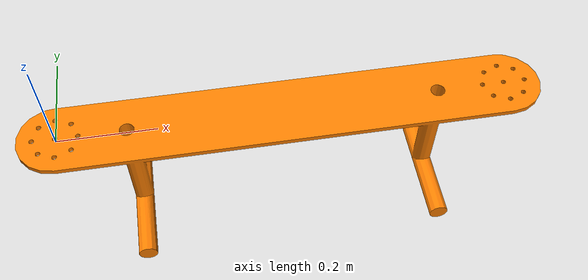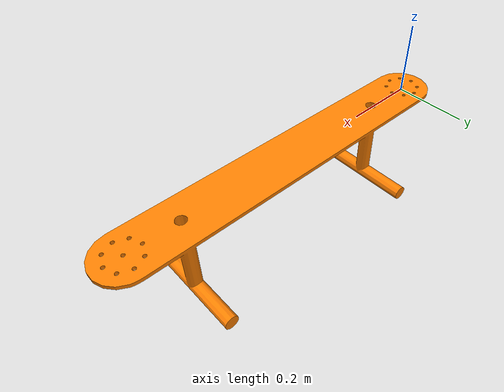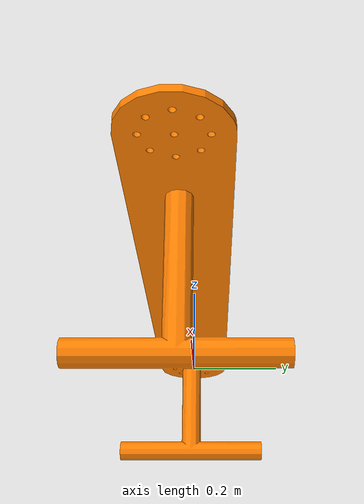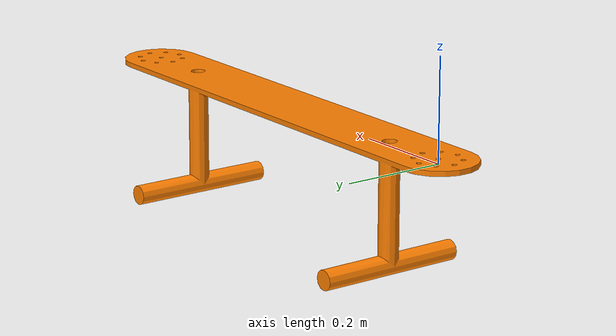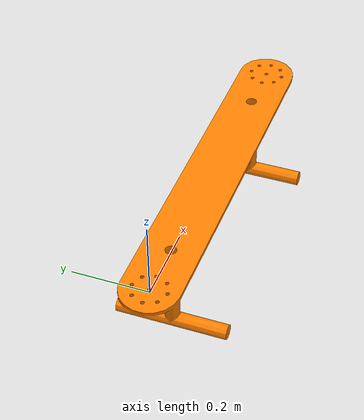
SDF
<sdf version='1.9'>
  <model name='path_marker'>
    <static>true</static>
    <link name='base_link'>
      <inertial>
        <pose>0.4572 -0.075291 8.9953e-08 0 0 0</pose>
        <mass>2.538</mass>
        <inertia>
          <ixx>0.03791</ixx>
          <ixy>2.4647e-07</ixy>
          <ixz>1.9347e-07</ixz>
          <iyy>0.24489</iyy>
          <iyz>-8.4438e-08</iyz>
          <izz>0.26552</izz>
        </inertia>
      </inertial>
      <collision name='base_link_collision'>
        <pose>0 0 0 0 0 0</pose>
        <geometry>
          <mesh>
            <scale>1 1 1</scale>
            <uri>model://path_marker/meshes/base_link.STL</uri>
          </mesh>
        </geometry>
      </collision>
      <visual name='base_link_visual'>
        <pose>0 0 0 0 0 0</pose>
        <geometry>
          <mesh>
            <scale>1 1 1</scale>
            <uri>model://path_marker/meshes/base_link.STL</uri>
          </mesh>
        </geometry>
        <material>
          <diffuse>1 0.5 0 1</diffuse>
          <ambient>1 0.5 0 1</ambient>
        </material>
      </visual>
    </link>
  </model>
</sdf>
